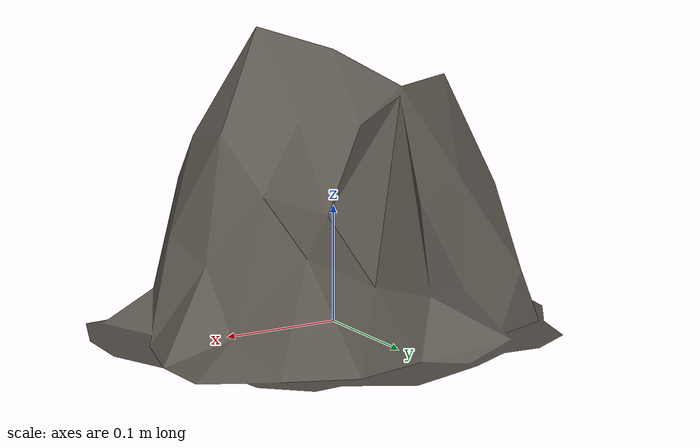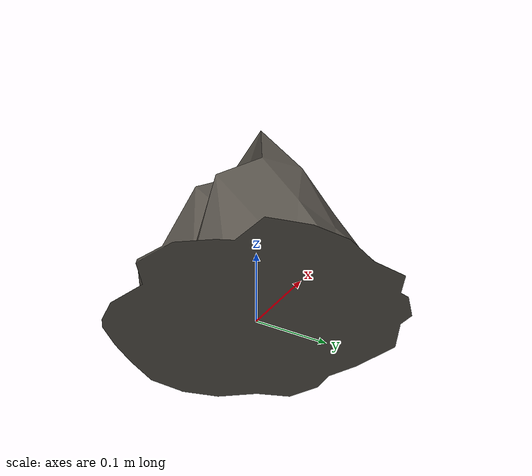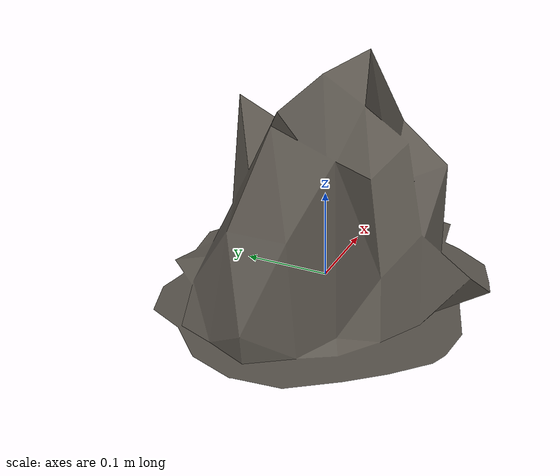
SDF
<?xml version="1.0"?>
<sdf version="1.9">
  <model name="rock_c">
    <static>true</static>
    <link name="link">
      <collision name="collision">
        <geometry>
          <mesh>
            <uri>model://rock_c/meshes/rock.obj</uri>
          </mesh>
        </geometry>
        <surface>
          <friction>
            <ode>
              <mu>0.9</mu>
              <mu2>0.9</mu2>
            </ode>
          </friction>
        </surface>
      </collision>
      <visual name="visual">
        <geometry>
          <mesh>
            <uri>model://rock_c/meshes/rock.obj</uri>
          </mesh>
        </geometry>
        <material>
          <ambient>0.35 0.33 0.30 1</ambient>
          <diffuse>0.35 0.33 0.30 1</diffuse>
          <specular>0 0 0 1</specular>
        </material>
      </visual>
    </link>
  </model>
</sdf>
